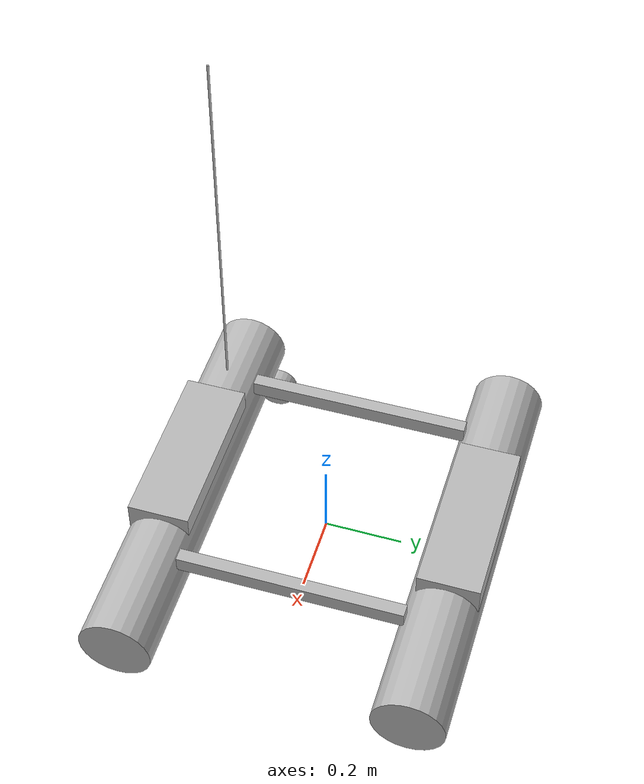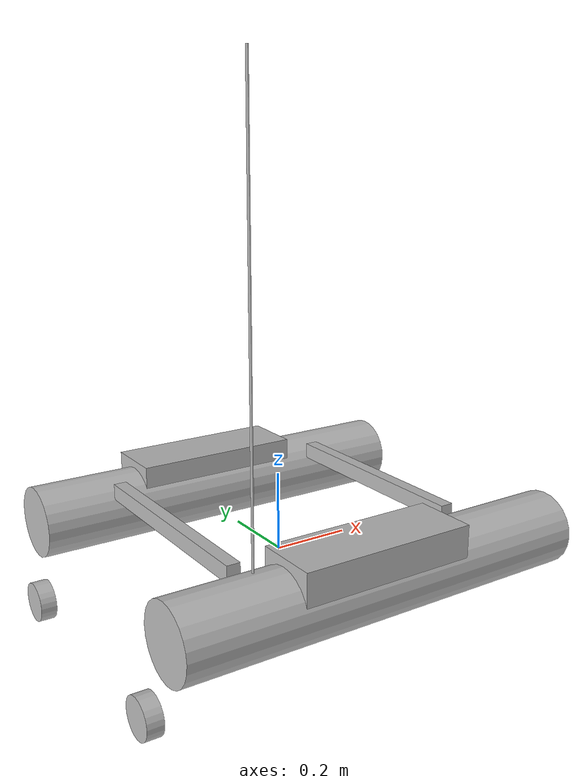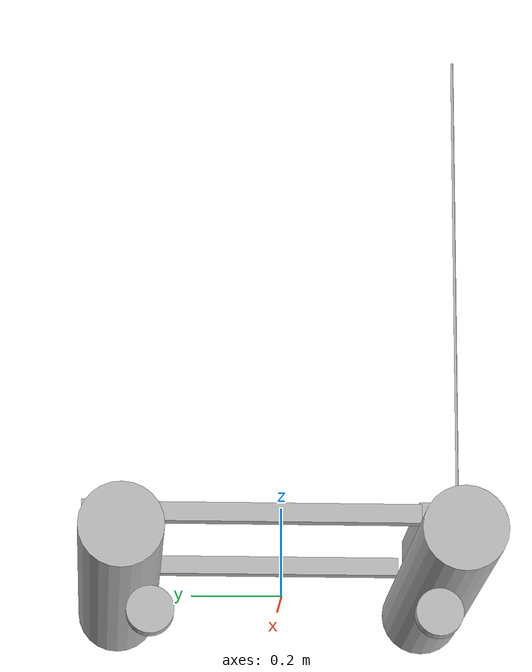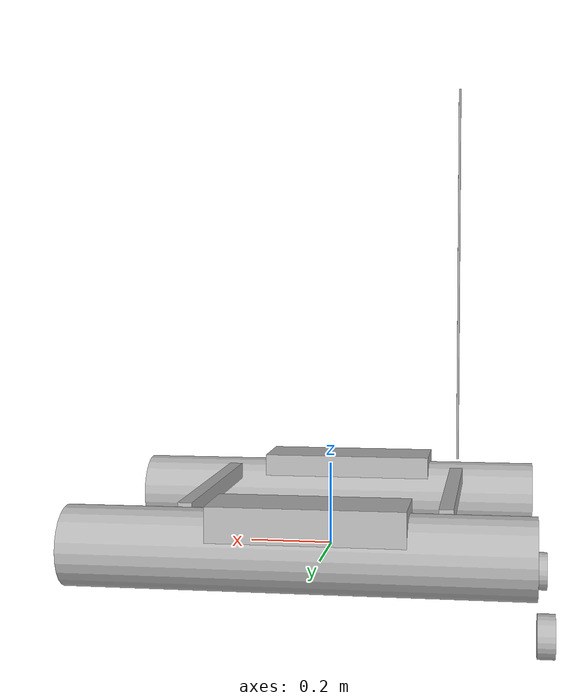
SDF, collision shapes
<?xml version="1.0" ?>
<sdf version="1.9">
  <model name="blueboat">
    <static>false</static>

    <!-- Base Link (Catamaran Hull & Electronics Deck) -->
    <link name="base_link">
      <pose>0 0 0 0 0 0</pose>
      <inertial>
        <pose>-0.3 0.0 -0.4 0 0 0</pose>
        <mass>22</mass>
        <inertia>
          <ixx>0.85</ixx><ixy>0.0</ixy><ixz>0.0</ixz>
          <iyy>1.45</iyy><iyz>0.0</iyz><izz>1.95</izz>
        </inertia>
        <fluid_added_mass>
          <xx>3.5</xx><yy>12.0</yy><zz>15.0</zz>
          <pp>0.5</pp><qq>1.2</qq><rr>2.8</rr>
        </fluid_added_mass>
      </inertial>

      <!-- 1. Catamaran Chassis (Hulls & Crossbars Deck) -->
      <visual name="chassis_visual">
        <pose>0 0 0 1.5707 0 0</pose>
        <geometry>
          <mesh>
            <uri>model://blueboat/meshes/blueboat_chassis.visual.glb</uri>
          </mesh>
        </geometry>
      </visual>

      <!-- 3. Safety Flag -->
      <visual name="flag_visual">
        <pose>-0.298 -0.3642 0.67 1.5707 0 1.5707</pose>
        <geometry>
          <mesh>
            <uri>model://blueboat/meshes/blueboat_flag.visual.glb</uri>
          </mesh>
        </geometry>
      </visual>

      <collision name="blueboat_chassis_collider_box">
        <pose>-0.002666 -0.368156 0.131239 0.0 0.0 0.0</pose>
        <geometry>
          <box>
            <size>0.439118 0.157103 0.079944</size>
          </box>
        </geometry>
      </collision>
      <collision name="blueboat_chassis_collider_box_1">
        <pose>-0.002666 0.368156 0.131239 0.0 -0.0 0.0</pose>
        <geometry>
          <box>
            <size>0.439118 0.157103 0.079944</size>
          </box>
        </geometry>
      </collision>
      <collision name="blueboat_chassis_collider_box_2">
        <pose>0.299228 0.0 0.126654 0.0 0.0 0.0</pose>
        <geometry>
          <box>
            <size>0.033317 0.572185 0.041201</size>
          </box>
        </geometry>
      </collision>
      <collision name="blueboat_chassis_collider_box_3">
        <pose>-0.297919 0.0 0.126654 0.0 0.0 0.0</pose>
        <geometry>
          <box>
            <size>0.033317 0.572185 0.041201</size>
          </box>
        </geometry>
      </collision>
      <collision name="blueboat_chassis_collider_cylinder">
        <pose>0.026602 -0.36148 0.059302 -0.0 1.570796 0.0</pose>
        <geometry>
          <cylinder>
            <radius>0.091714</radius>
            <length>1.050837</length>
          </cylinder>
        </geometry>
      </collision>
      <collision name="blueboat_chassis_collider_cylinder_1">
        <pose>0.026602 0.36148 0.059302 -0.0 1.570796 0.0</pose>
        <geometry>
          <cylinder>
            <radius>0.091714</radius>
            <length>1.050837</length>
          </cylinder>
        </geometry>
      </collision>

      <!-- Safety Flag Collision -->
      <collision name="collision_flag">
        <pose>-0.298 -0.3642 0.6568 0 0 0</pose>
        <geometry>
          <cylinder>
            <radius>0.003</radius>
            <length>0.995</length>
          </cylinder>
        </geometry>
      </collision>

      <!-- 1. IMU Sensor (50 Hz) -->
      <sensor name="imu_sensor" type="imu">
        <always_on>true</always_on>
        <update_rate>50</update_rate>
        <topic>/blueboat/imu</topic>
        <imu>
          <angular_velocity>
            <x><noise type="gaussian"><mean>0.0</mean><stddev>0.005</stddev></noise></x>
            <y><noise type="gaussian"><mean>0.0</mean><stddev>0.005</stddev></noise></y>
            <z><noise type="gaussian"><mean>0.0</mean><stddev>0.003</stddev></noise></z>
          </angular_velocity>
          <linear_acceleration>
            <x><noise type="gaussian"><mean>0.0</mean><stddev>0.02</stddev></noise></x>
            <y><noise type="gaussian"><mean>0.0</mean><stddev>0.02</stddev></noise></y>
            <z><noise type="gaussian"><mean>0.0</mean><stddev>0.02</stddev></noise></z>
          </linear_acceleration>
        </imu>
      </sensor>

      <!-- 2. NavSat GPS Sensor (5 Hz) -->
      <sensor name="navsat_sensor" type="navsat">
        <always_on>true</always_on>
        <update_rate>5</update_rate>
        <topic>/blueboat/gps</topic>
        <navsat>
          <position_sensing>
            <horizontal><noise type="gaussian"><mean>0.0</mean><stddev>0.3</stddev></noise></horizontal>
            <vertical><noise type="gaussian"><mean>0.0</mean><stddev>0.5</stddev></noise></vertical>
          </position_sensing>
        </navsat>
      </sensor>

      <!-- 3. Contact Collision Sensor -->
      <sensor name="contact_sensor" type="contact">
        <always_on>true</always_on>
        <update_rate>50</update_rate>
        <topic>/blueboat/contacts</topic>
        <contact>
          <collision>blueboat_chassis_collider_cylinder</collision>
          <collision>blueboat_chassis_collider_cylinder_1</collision>
          <collision>blueboat_chassis_collider_box</collision>
          <collision>blueboat_chassis_collider_box_1</collision>
          <collision>blueboat_chassis_collider_box_2</collision>
          <collision>blueboat_chassis_collider_box_3</collision>
        </contact>
      </sensor>

      <!-- 4. Ping2 Port-Side Echosounder (GPU LiDAR at +90 deg / port) -->
      <sensor name="ping2_port" type="gpu_lidar">
        <pose>0.1 0.30 0.05 0 0 1.57079632679</pose>
        <always_on>true</always_on>
        <update_rate>10</update_rate>
        <visualize>true</visualize>
        <topic>/blueboat/ping2_port</topic>
        <lidar>
          <scan>
            <horizontal><samples>1</samples><resolution>1</resolution><min_angle>0.0</min_angle><max_angle>0.0</max_angle></horizontal>
          </scan>
          <range><min>0.5</min><max>30.0</max><resolution>0.01</resolution></range>
          <noise><type>gaussian</type><mean>0.0</mean><stddev>0.02</stddev></noise>
        </lidar>
      </sensor>
    </link>

    <!-- Left Thruster (Blue Robotics T200 with M200 CCW Propeller) -->
    <link name="left_propeller_link">
      <pose>-0.52 0.30 -0.1275 0 0 0</pose>
      <inertial>
        <mass>0.15</mass>
        <inertia><ixx>0.0002</ixx><ixy>0.0</ixy><ixz>0.0</ixz><iyy>0.0001</iyy><iyz>0.0</iyz><izz>0.0001</izz></inertia>
      </inertial>
      <visual name="left_propeller_visual">
        <pose>0 0 0 0 3.14159 0</pose>
        <geometry>
          <mesh>
            <uri>model://blueboat/meshes/m200_weedless_prop_ccw.visual.glb</uri>
          </mesh>
        </geometry>
      </visual>
      <collision name="left_propeller_collision">
        <pose>0 0 0 0 1.57079632679 0</pose>
        <geometry><cylinder><radius>0.05</radius><length>0.04</length></cylinder></geometry>
      </collision>
    </link>

    <joint name="left_propeller_joint" type="revolute">
      <parent>base_link</parent>
      <child>left_propeller_link</child>
      <axis><xyz>1 0 0</xyz><limit><lower>-1e16</lower><upper>1e16</upper></limit></axis>
    </joint>

    <!-- Right Thruster (Blue Robotics T200 with M200 CW Propeller) -->
    <link name="right_propeller_link">
      <pose>-0.52 -0.30 -0.1275 0 0 0</pose>
      <inertial>
        <mass>0.15</mass>
        <inertia><ixx>0.0002</ixx><ixy>0.0</ixy><ixz>0.0</ixz><iyy>0.0001</iyy><iyz>0.0</iyz><izz>0.0001</izz></inertia>
      </inertial>
      <visual name="right_propeller_visual">
        <pose>0 0 0 0 3.14159 0</pose>
        <geometry>
          <mesh>
            <uri>model://blueboat/meshes/m200_weedless_prop_cw.visual.glb</uri>
          </mesh>
        </geometry>
      </visual>
      <collision name="right_propeller_collision">
        <pose>0 0 0 0 1.57079632679 0</pose>
        <geometry><cylinder><radius>0.05</radius><length>0.04</length></cylinder></geometry>
      </collision>
    </link>

    <joint name="right_propeller_joint" type="revolute">
      <parent>base_link</parent>
      <child>right_propeller_link</child>
      <axis><xyz>1 0 0</xyz><limit><lower>-1e16</lower><upper>1e16</upper></limit></axis>
    </joint>

    <!-- Fossen Hydrodynamics Plugin -->
    <plugin
      filename="gz-sim-hydrodynamics-system"
      name="gz::sim::systems::Hydrodynamics">
      <link_name>base_link</link_name>
      <xU>-15.0</xU><yV>-45.0</yV><zW>-50.0</zW>
      <kP>-6.0</kP><mQ>-8.0</mQ><nR>-12.0</nR>
      <xUabsU>-30.0</xUabsU><yVabsV>-52.0</yVabsV><zWabsW>-68.0</zWabsW>
      <kPabsP>-6.0</kPabsP><mQabsQ>-10.0</mQabsQ><nRabsR>-22.0</nRabsR>
    </plugin>

    <!-- Thruster Plugins -->
    <plugin
      filename="gz-sim-thruster-system"
      name="gz::sim::systems::Thruster">
      <namespace>blueboat</namespace>
      <joint_name>left_propeller_joint</joint_name>
      <thrust_coefficient>-0.0035</thrust_coefficient>
      <fluid_density>1000</fluid_density>
      <propeller_diameter>0.10</propeller_diameter>
      <velocity_control>false</velocity_control>
      <use_angvel_cmd>false</use_angvel_cmd>
      <topic>cmd_thrust_left</topic>
    </plugin>

    <plugin
      filename="gz-sim-thruster-system"
      name="gz::sim::systems::Thruster">
      <namespace>blueboat</namespace>
      <joint_name>right_propeller_joint</joint_name>
      <thrust_coefficient>0.0035</thrust_coefficient>
      <fluid_density>1000</fluid_density>
      <propeller_diameter>0.10</propeller_diameter>
      <velocity_control>false</velocity_control>
      <use_angvel_cmd>false</use_angvel_cmd>
      <topic>cmd_thrust_right</topic>
    </plugin>

  </model>
</sdf>
